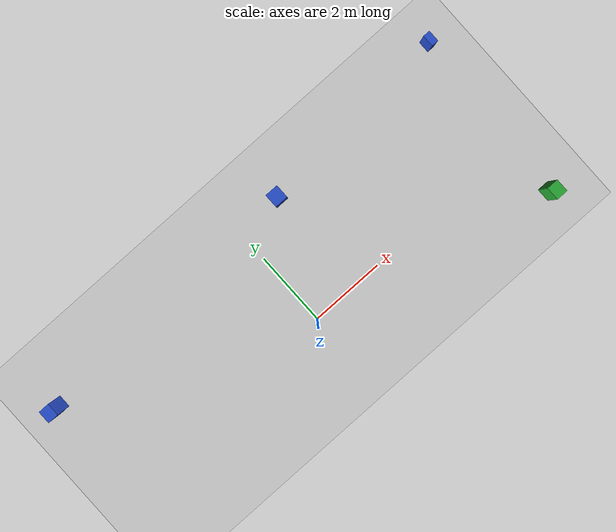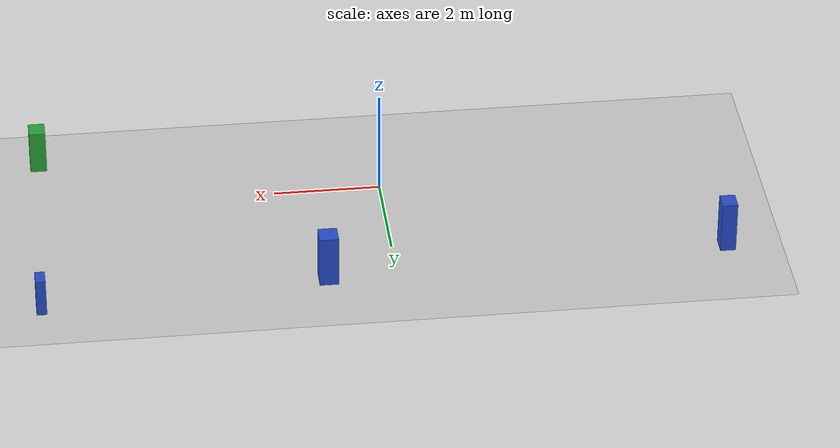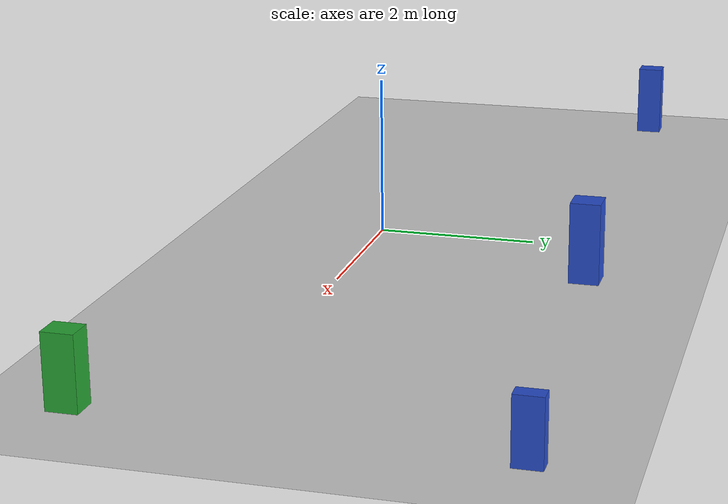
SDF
<sdf version="1.7">
 <world name="default">
  <light name="sun" type="directional">
   <pose>0 0 10 0 -0 0</pose>
   <diffuse>0.8 0.8 0.8 1</diffuse>
   <specular>0.2 0.2 0.2 1</specular>
   <attenuation>
    <range>1000</range>
    <constant>0.9</constant>
    <linear>0.01</linear>
    <quadratic>0.001</quadratic>
   </attenuation>
   <direction>-0.5 0.1 -0.9</direction>
   <spot><inner_angle>0</inner_angle><outer_angle>0</outer_angle><falloff>0</falloff></spot>
  </light>
  <model name="ground_plane">
   <static>1</static>
   <link name="link">
    <collision name="collision">
     <geometry><plane><normal>0 0 1</normal><size>100 100</size></plane></geometry>
     <surface>
      <contact><collide_bitmask>65535</collide_bitmask></contact>
      <friction><ode><mu>100</mu><mu2>50</mu2></ode></friction>
     </surface>
    </collision>
    <visual name="visual">
     <cast_shadows>0</cast_shadows>
     <geometry><plane><normal>0 0 1</normal><size>100 100</size></plane></geometry>
     <material>
      <script><uri>file://media/materials/scripts/gazebo.material</uri><name>Gazebo/Grey</name></script>
     </material>
    </visual>
   </link>
  </model>
  <physics type="ode">
   <real_time_update_rate>1000</real_time_update_rate>
   <max_step_size>0.001</max_step_size>
   <real_time_factor>1</real_time_factor>
   <ode>
    <solver>
     <type>quick</type>
     <iters>150</iters>
     <precon_iters>0</precon_iters>
     <sor>1.4</sor>
     <use_dynamic_moi_rescaling>1</use_dynamic_moi_rescaling>
    </solver>
    <constraints>
     <cfm>1e-05</cfm>
     <erp>0.2</erp>
     <contact_max_correcting_vel>2000</contact_max_correcting_vel>
     <contact_surface_layer>0.01</contact_surface_layer>
    </constraints>
   </ode>
  </physics>
  <scene><ambient>0.4 0.4 0.4 1</ambient><background>0.7 0.7 0.7 1</background><shadows>1</shadows></scene>
  <gravity>0 0 -9.8</gravity>
  <magnetic_field>6e-06 2.3e-05 -4.2e-05</magnetic_field>
  <atmosphere type="adiabatic"/>
  <spherical_coordinates>
   <surface_model>EARTH_WGS84</surface_model>
   <latitude_deg>0</latitude_deg>
   <longitude_deg>0</longitude_deg>
   <elevation>0</elevation>
   <heading_deg>0</heading_deg>
  </spherical_coordinates>
  <model name="unit_box">
   <pose>6.55369 3.28312 0.368373 0 -2e-06 -4.4e-05</pose>
   <link name="link">
    <inertial>
     <mass>1</mass>
     <inertia>
      <ixx>0.166667</ixx>
      <ixy>0</ixy>
      <ixz>0</ixz>
      <iyy>0.166667</iyy>
      <iyz>0</iyz>
      <izz>0.166667</izz>
     </inertia>
    </inertial>
    <collision name="collision">
     <geometry><box><size>0.186853 0.314708 0.736745</size></box></geometry>
    </collision>
    <visual name="visual">
     <geometry><box><size>0.186853 0.314708 0.736745</size></box></geometry>
     <material>
      <script><name>Gazebo/Blue</name><uri>file://media/materials/scripts/gazebo.material</uri></script>
     </material>
    </visual>
   </link>
  </model>
  <model name="unit_box_0">
   <pose>6.38466 -1.42886 0.422309 0 -0 0.000969</pose>
   <link name="link">
    <inertial>
     <mass>1</mass>
     <inertia>
      <ixx>0.166667</ixx>
      <ixy>0</ixy>
      <ixz>0</ixz>
      <iyy>0.166667</iyy>
      <iyz>0</iyz>
      <izz>0.166667</izz>
     </inertia>
    </inertial>
    <collision name="collision">
     <geometry><box><size>0.309312 0.357018 0.844617</size></box></geometry>
    </collision>
    <visual name="visual">
     <geometry><box><size>0.309312 0.357018 0.844617</size></box></geometry>
     <material>
      <script><name>Gazebo/Green</name><uri>file://media/materials/scripts/gazebo.material</uri></script>
     </material>
    </visual>
   </link>
  </model>
  <model name="unit_box_1">
   <pose>1.27241 2.9058 0.5 0 -0 0</pose>
   <link name="link">
    <inertial>
     <mass>1</mass>
     <inertia>
      <ixx>0.166667</ixx>
      <ixy>0</ixy>
      <ixz>0</ixz>
      <iyy>0.166667</iyy>
      <iyz>0</iyz>
      <izz>0.166667</izz>
     </inertia>
    </inertial>
    <collision name="collision"><geometry><box><size>0.356242 0.369412 1</size></box></geometry></collision>
    <visual name="visual">
     <geometry><box><size>0.356242 0.369412 1</size></box></geometry>
     <material>
      <script><name>Gazebo/Blue</name><uri>file://media/materials/scripts/gazebo.material</uri></script>
     </material>
    </visual>
   </link>
  </model>
  <model name="unit_box_2">
   <pose>-6.18231 2.65276 0.5 0 -0 0</pose>
   <link name="link">
    <inertial>
     <mass>1</mass>
     <inertia>
      <ixx>0.166667</ixx>
      <ixy>0</ixy>
      <ixz>0</ixz>
      <iyy>0.166667</iyy>
      <iyz>0</iyz>
      <izz>0.166667</izz>
     </inertia>
    </inertial>
    <collision name="collision"><geometry><box><size>0.287551 0.346827 1</size></box></geometry></collision>
    <visual name="visual">
     <geometry><box><size>0.287551 0.346827 1</size></box></geometry>
     <material>
      <script><name>Gazebo/Blue</name><uri>file://media/materials/scripts/gazebo.material</uri></script>
     </material>
    </visual>
   </link>
  </model>
 </world>
</sdf>
